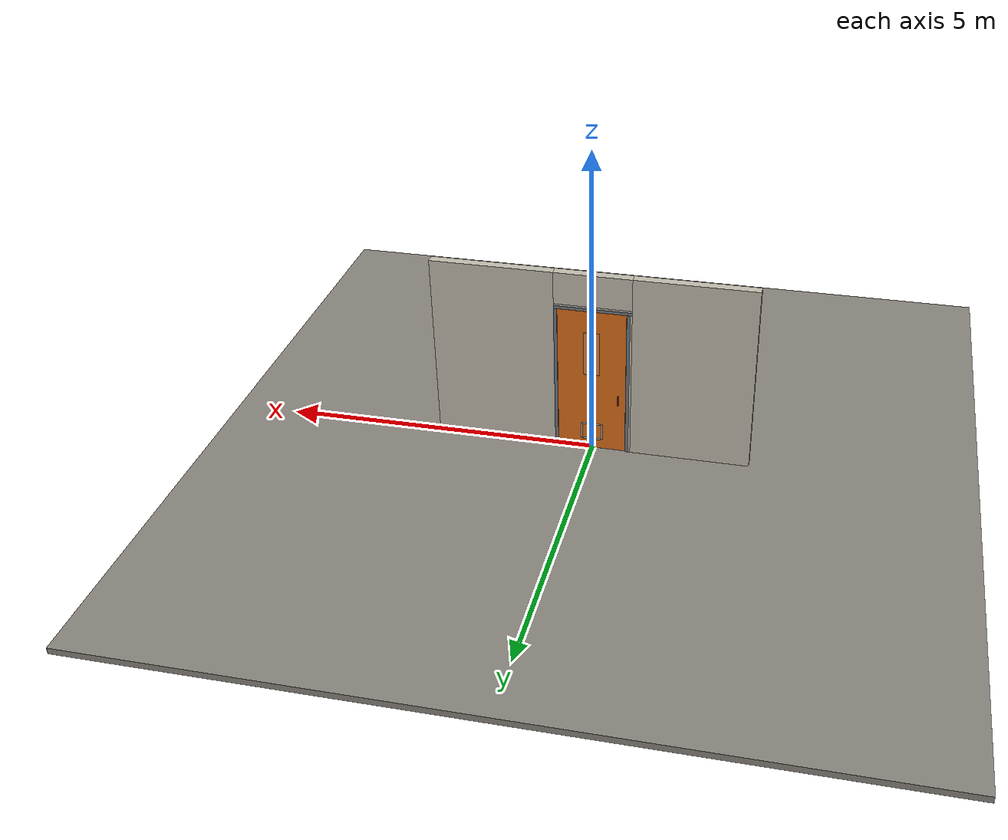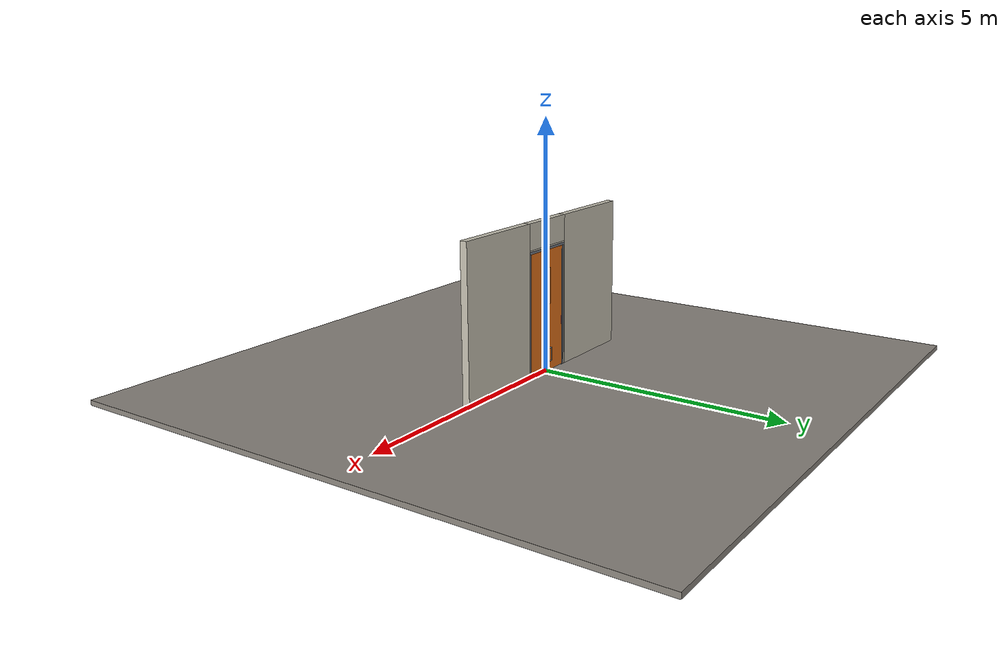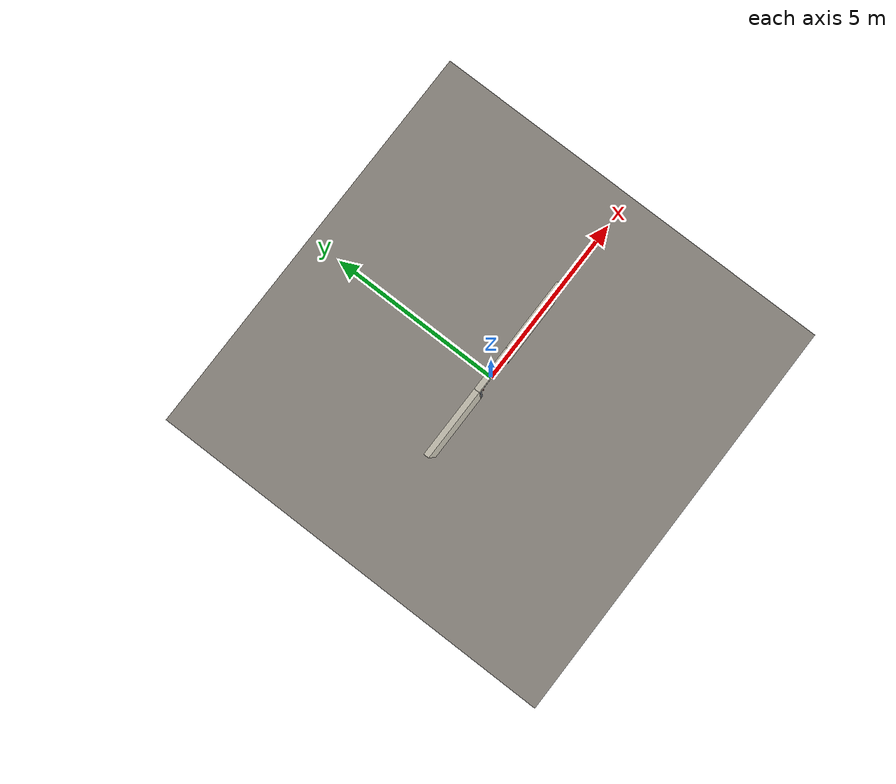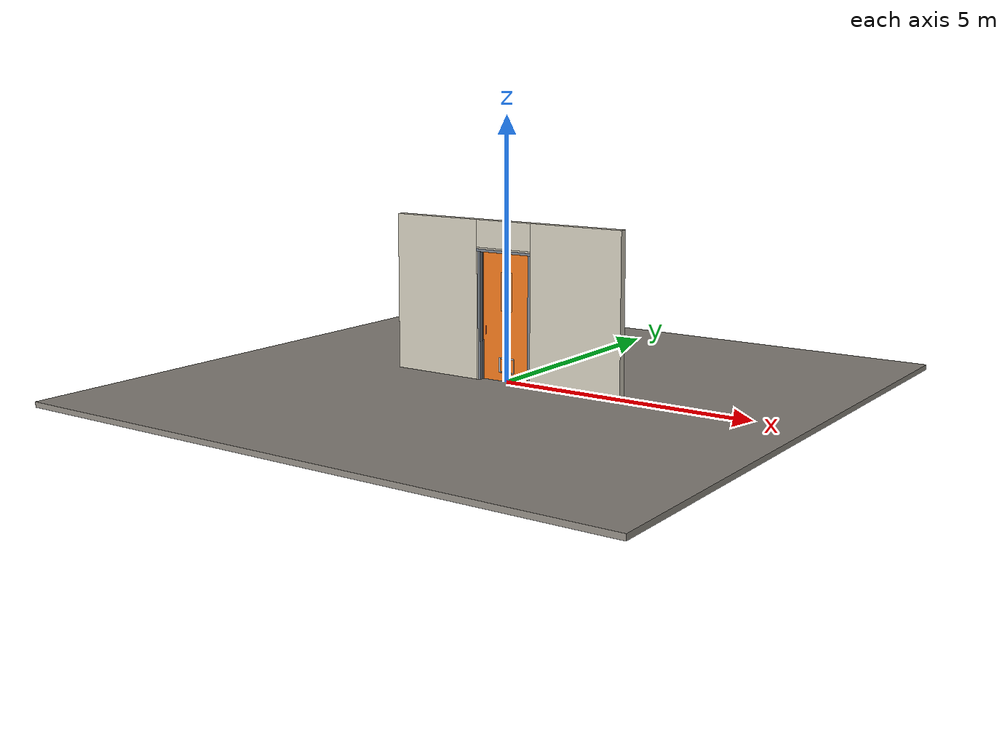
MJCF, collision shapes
<?xml version="1.0" ?>
<mujoco model="db0667_swing_single_full">
  <compiler angle="radian" meshdir="../../hardware" texturedir="../../textures" autolimits="true" inertiafromgeom="false"/>
  <option timestep="0.002" integrator="implicitfast" cone="elliptic" impratio="10" noslip_iterations="3">
    <flag multiccd="enable"/>
  </option>
  <size memory="16M"/>
  <default>
    <geom condim="4" solref="0.005 1" solimp="0.95 0.99 0.001"/>
    <joint solreflimit="0.005 1" solimplimit="0.95 0.99 0.001"/>
    <tendon solreflimit="0.005 1"/>
    <equality solref="0.002 1"/>
  </default>
  <visual>
    <headlight ambient="0.4 0.4 0.4" diffuse="0.7 0.7 0.7" specular="0.2 0.2 0.2"/>
    <quality shadowsize="4096"/>
    <map znear="0.01" zfar="60"/>
  </visual>
  <asset>
    <mesh name="hinge_e3fd49fe13" file="hinge_e3fd49fe13.obj"/>
    <mesh name="hinge_jamb_e47eb19c39" file="hinge_jamb_e47eb19c39.obj"/>
    <mesh name="pull_1e5d69a91a" file="pull_1e5d69a91a.obj"/>
    <material name="mat_floor" rgba="0.55 0.53 0.5 1" specular="0.2" shininess="0.15" reflectance="0"/>
    <material name="mat_wall" rgba="0.78 0.76 0.7 1" specular="0.2" shininess="0.1" reflectance="0"/>
    <material name="mat_leaf" rgba="0.9 0.45 0.1 1" specular="0.2" shininess="0.52" reflectance="0"/>
    <material name="mat_glass" rgba="0.85 0.92 0.95 0.25" specular="0.2" shininess="0.95" reflectance="0.1"/>
    <material name="mat_hinge" rgba="0.65 0.66 0.68 1" specular="0.74" shininess="0.5" reflectance="0.36"/>
    <material name="mat_op_stainless" rgba="0.75 0.76 0.77 1" specular="0.8" shininess="0.65" reflectance="0.4"/>
    <material name="mat_frame" rgba="0.45 0.48 0.52 1" specular="0.32" shininess="0.6" reflectance="0.08"/>
    <material name="mat_vent" rgba="0.8 0.81 0.83 1" specular="0.8" shininess="0.6" reflectance="0.4"/>
    <texture name="skybox" type="skybox" builtin="gradient" rgb1="0.6 0.7 0.85" rgb2="0.9 0.92 0.95" width="256" height="256"/>
  </asset>
  <worldbody>
    <light name="sun" pos="1.5 -2.5 4" dir="-0.3 0.5 -0.8" directional="true" diffuse="0.8 0.8 0.8" specular="0.3 0.3 0.3" castshadow="true"/>
    <light name="fill" pos="-1.5 2.5 3" dir="0.3 -0.5 -0.7" directional="true" diffuse="0.35 0.35 0.4" castshadow="false"/>
    <camera name="robot_view" pos="0 -2.970813 2.043887" xyaxes="1 0 0 0 0.26963 0.962964" fovy="52"/>
    <camera name="far_view" pos="0 2.874812 2.043887" xyaxes="-1 0 0 0 -0.26963 0.962964" fovy="52"/>
    <camera name="iso" pos="-2.221337 -2.503163 2.511538" xyaxes="0.741536 -0.670913 0 0.242917 0.268487 0.932151" fovy="46"/>
    <camera name="detail_handle" pos="-0.248 -0.8775 1.245" xyaxes="0.97561 0.219512 0 -0.070934 0.315262 0.94635" fovy="38"/>
    <geom name="floor" type="box" size="6 6 0.05" pos="0 0 -0.05" material="mat_floor" group="0" contype="1" conaffinity="1" friction="0.8 0.005 0.0001" density="2400"/>
    <geom name="wall_left" type="box" size="0.9415 0.0725 1.5255" pos="-1.5585 -0.048 1.5255" material="mat_wall" group="0" contype="1" conaffinity="1" friction="0.6 0.005 0.0001" density="800"/>
    <geom name="wall_right" type="box" size="0.9565 0.0725 1.5255" pos="1.5435 -0.048 1.5255" material="mat_wall" group="0" contype="1" conaffinity="1" friction="0.6 0.005 0.0001" density="800"/>
    <geom name="wall_header" type="box" size="0.602 0.0725 0.26" pos="-0.015 -0.048 2.791" material="mat_wall" group="0" contype="1" conaffinity="1" friction="0.6 0.005 0.0001" density="800"/>
    <geom name="hinge_0_jamb" type="mesh" mesh="hinge_jamb_e47eb19c39" pos="0.534 0.0245 0.259" quat="0 0 0 1" material="mat_hinge" group="1" contype="0" conaffinity="0" density="7850"/>
    <geom name="hinge_1_jamb" type="mesh" mesh="hinge_jamb_e47eb19c39" pos="0.534 0.0245 1.228" quat="0 0 0 1" material="mat_hinge" group="1" contype="0" conaffinity="0" density="7850"/>
    <geom name="hinge_2_jamb" type="mesh" mesh="hinge_jamb_e47eb19c39" pos="0.534 0.0245 2.267" quat="0 0 0 1" material="mat_hinge" group="1" contype="0" conaffinity="0" density="7850"/>
    <geom name="jamb_hinge" type="box" size="0.025 0.0725 1.2255" pos="0.562 -0.048 1.2255" material="mat_frame" group="0" contype="1" conaffinity="1" friction="0.6 0.005 0.0001" density="300"/>
    <geom name="jamb_strike" type="box" size="0.025 0.0725 1.2255" pos="-0.562 -0.048 1.2255" material="mat_frame" group="0" contype="1" conaffinity="1" friction="0.6 0.005 0.0001" density="300"/>
    <geom name="stud_strike" type="box" size="0.015 0.0725 1.2255" pos="-0.602 -0.048 1.2255" material="mat_wall" group="0" contype="1" conaffinity="1" friction="0.6 0.005 0.0001" density="500"/>
    <geom name="jamb_head" type="box" size="0.602 0.0725 0.025" pos="-0.015 -0.048 2.476" material="mat_frame" group="0" contype="1" conaffinity="1" friction="0.6 0.005 0.0001" density="300"/>
    <geom name="head_stud" type="box" size="0.602 0.0725 0.015" pos="-0.015 -0.048 2.516" material="mat_wall" group="0" contype="1" conaffinity="1" friction="0.6 0.005 0.0001" density="500"/>
    <geom name="stop_hinge" type="box" size="0.0055 0.016 1.2255" pos="0.5315 -0.034 1.2255" material="mat_frame" group="0" contype="1" conaffinity="1" friction="0.6 0.005 0.0001" density="300"/>
    <geom name="stop_strike" type="box" size="0.0055 0.016 1.2255" pos="-0.5315 -0.034 1.2255" material="mat_frame" group="0" contype="1" conaffinity="1" friction="0.6 0.005 0.0001" density="300"/>
    <geom name="stop_head" type="box" size="0.537 0.016 0.0055" pos="0 -0.034 2.4455" material="mat_frame" group="0" contype="1" conaffinity="1" friction="0.6 0.005 0.0001" density="300"/>
    <site name="approach_point" pos="0 -1.5 0" quat="1 0 0 0" size="0.05" rgba="0.2 0.9 0.2 0.5" group="4"/>
    <site name="goal_point" pos="0 1.5 0" quat="1 0 0 0" size="0.05" rgba="0.2 0.9 0.2 0.5" group="4"/>
    <site name="door_plane_center" pos="0 0 1.2255" quat="1 0 0 0" size="0.02" rgba="0.2 0.9 0.2 0.5" group="4"/>
    <body name="leaf" pos="0.537 0 0">
      <inertial pos="-0.537102 0.000187 1.208105" mass="60.417453" quat="0.499094 0.498571 0.501418 -0.500911" diaginertia="5.865875731 30.01319282 35.856926178"/>
      <joint name="leaf_hinge" type="hinge" axis="0 0 -1" pos="-0.003 0.0245 0" limited="true" range="0 1.570796" damping="2.570702" frictionloss="3.257446" stiffness="6.6" springref="-0.641618" armature="0.02"/>
      <geom name="leaf_slab" type="box" size="0.5335 0.0175 1.219" pos="-0.5365 0 1.228" material="mat_leaf" group="0" contype="1" conaffinity="1" friction="0.4 0.005 0.0001" density="1"/>
      <geom name="leaf_glass_0" type="box" size="0.125 0.0183 0.3657" pos="-0.5365 0 1.7156" material="mat_glass" group="1" contype="0" conaffinity="0" density="1"/>
      <geom name="hinge_0" type="mesh" mesh="hinge_e3fd49fe13" pos="-0.003 0.0245 0.259" quat="0 0 0 1" material="mat_hinge" group="1" contype="0" conaffinity="0" density="7850"/>
      <geom name="hinge_1" type="mesh" mesh="hinge_e3fd49fe13" pos="-0.003 0.0245 1.228" quat="0 0 0 1" material="mat_hinge" group="1" contype="0" conaffinity="0" density="7850"/>
      <geom name="hinge_2" type="mesh" mesh="hinge_e3fd49fe13" pos="-0.003 0.0245 2.267" quat="0 0 0 1" material="mat_hinge" group="1" contype="0" conaffinity="0" density="7850"/>
      <geom name="leaf_pull_n" type="mesh" mesh="pull_1e5d69a91a" pos="-0.965 -0.0175 0.965" quat="0 0 -0.707107 0.707107" material="mat_op_stainless" group="1" contype="0" conaffinity="0" density="3000"/>
      <geom name="leaf_pull_col_n" type="capsule" size="0.0095 0.08" pos="-0.965 -0.0775 0.965" material="mat_op_stainless" group="3" contype="1" conaffinity="1" rgba="0.8 0.3 0.3 0.25" friction="0.7 0.01 0.0001" density="3000"/>
      <geom name="leaf_pull_p" type="mesh" mesh="pull_1e5d69a91a" pos="-0.965 0.0175 0.965" quat="0 0 0.707107 0.707107" material="mat_op_stainless" group="1" contype="0" conaffinity="0" density="3000"/>
      <geom name="leaf_pull_col_p" type="capsule" size="0.0095 0.08" pos="-0.965 0.0775 0.965" material="mat_op_stainless" group="3" contype="1" conaffinity="1" rgba="0.8 0.3 0.3 0.25" friction="0.7 0.01 0.0001" density="3000"/>
      <geom name="louver_vent_stile_n_l" type="box" size="0.012 0.002 0.137" pos="-0.6985 -0.0195 0.314" material="mat_vent" group="2" contype="0" conaffinity="0" density="2700"/>
      <geom name="louver_vent_stile_n_r" type="box" size="0.012 0.002 0.137" pos="-0.3745 -0.0195 0.314" material="mat_vent" group="2" contype="0" conaffinity="0" density="2700"/>
      <geom name="louver_vent_rail_n_b" type="box" size="0.15 0.002 0.012" pos="-0.5365 -0.0195 0.177" material="mat_vent" group="2" contype="0" conaffinity="0" density="2700"/>
      <geom name="louver_vent_rail_n_t" type="box" size="0.15 0.002 0.012" pos="-0.5365 -0.0195 0.451" material="mat_vent" group="2" contype="0" conaffinity="0" density="2700"/>
      <geom name="louver_vent_stile_p_l" type="box" size="0.012 0.002 0.137" pos="-0.6985 0.0195 0.314" material="mat_vent" group="2" contype="0" conaffinity="0" density="2700"/>
      <geom name="louver_vent_stile_p_r" type="box" size="0.012 0.002 0.137" pos="-0.3745 0.0195 0.314" material="mat_vent" group="2" contype="0" conaffinity="0" density="2700"/>
      <geom name="louver_vent_rail_p_b" type="box" size="0.15 0.002 0.012" pos="-0.5365 0.0195 0.177" material="mat_vent" group="2" contype="0" conaffinity="0" density="2700"/>
      <geom name="louver_vent_rail_p_t" type="box" size="0.15 0.002 0.012" pos="-0.5365 0.0195 0.451" material="mat_vent" group="2" contype="0" conaffinity="0" density="2700"/>
      <geom name="louver_vent_slat_0" type="box" size="0.15 0.0015 0.015" pos="-0.5365 0 0.209833" quat="0.965926 -0.258819 0 0" material="mat_vent" group="2" contype="0" conaffinity="0" density="2700"/>
      <geom name="louver_vent_slat_1" type="box" size="0.15 0.0015 0.015" pos="-0.5365 0 0.2515" quat="0.965926 -0.258819 0 0" material="mat_vent" group="2" contype="0" conaffinity="0" density="2700"/>
      <geom name="louver_vent_slat_2" type="box" size="0.15 0.0015 0.015" pos="-0.5365 0 0.293167" quat="0.965926 -0.258819 0 0" material="mat_vent" group="2" contype="0" conaffinity="0" density="2700"/>
      <geom name="louver_vent_slat_3" type="box" size="0.15 0.0015 0.015" pos="-0.5365 0 0.334833" quat="0.965926 -0.258819 0 0" material="mat_vent" group="2" contype="0" conaffinity="0" density="2700"/>
      <geom name="louver_vent_slat_4" type="box" size="0.15 0.0015 0.015" pos="-0.5365 0 0.3765" quat="0.965926 -0.258819 0 0" material="mat_vent" group="2" contype="0" conaffinity="0" density="2700"/>
      <geom name="louver_vent_slat_5" type="box" size="0.15 0.0015 0.015" pos="-0.5365 0 0.418167" quat="0.965926 -0.258819 0 0" material="mat_vent" group="2" contype="0" conaffinity="0" density="2700"/>
      <site name="leaf_pull_grip_n" pos="-0.965 -0.0775 0.965" quat="1 0 0 0" size="0.012" rgba="0.2 0.9 0.2 0.5" group="4"/>
      <site name="leaf_pull_grip_p" pos="-0.965 0.0775 0.965" quat="1 0 0 0" size="0.012" rgba="0.2 0.9 0.2 0.5" group="4"/>
      <site name="leaf_edge_mid" pos="-1.07 0 1.219" quat="1 0 0 0" size="0.02" rgba="0.2 0.9 0.2 0.5" group="4"/>
    </body>
  </worldbody>
  <sensor>
    <jointpos name="leaf_hinge_pos" joint="leaf_hinge"/>
    <jointvel name="leaf_hinge_vel" joint="leaf_hinge"/>
  </sensor>
</mujoco>
